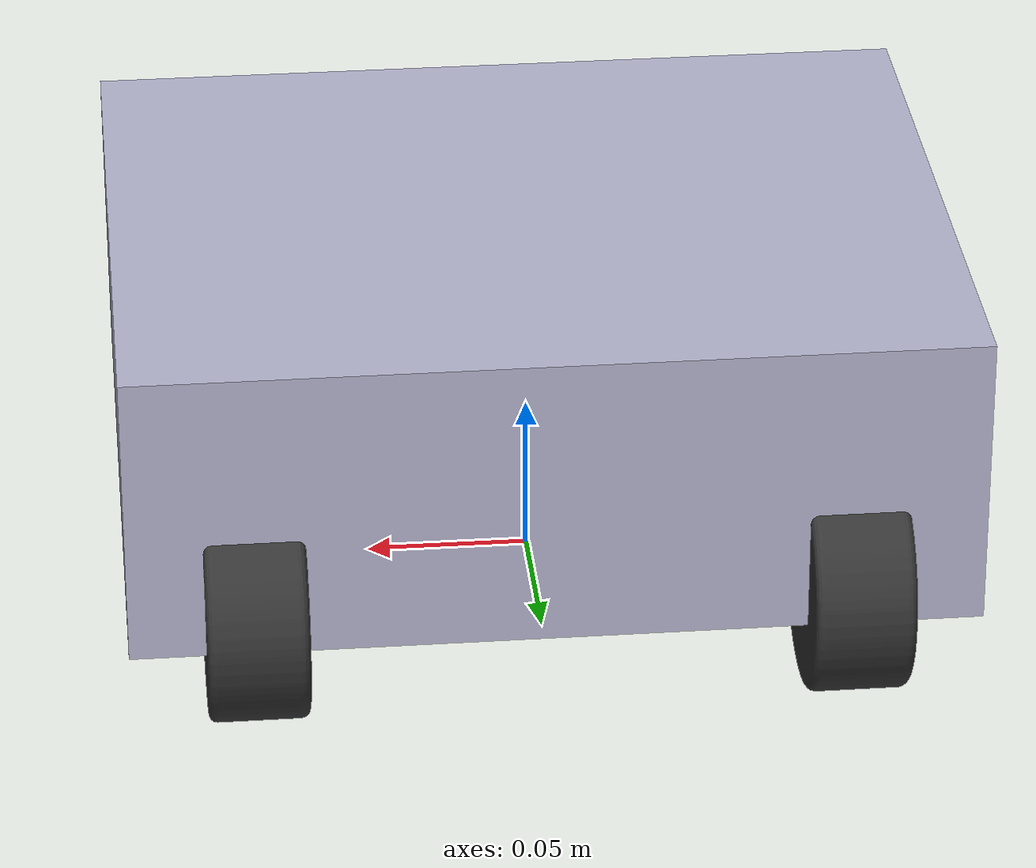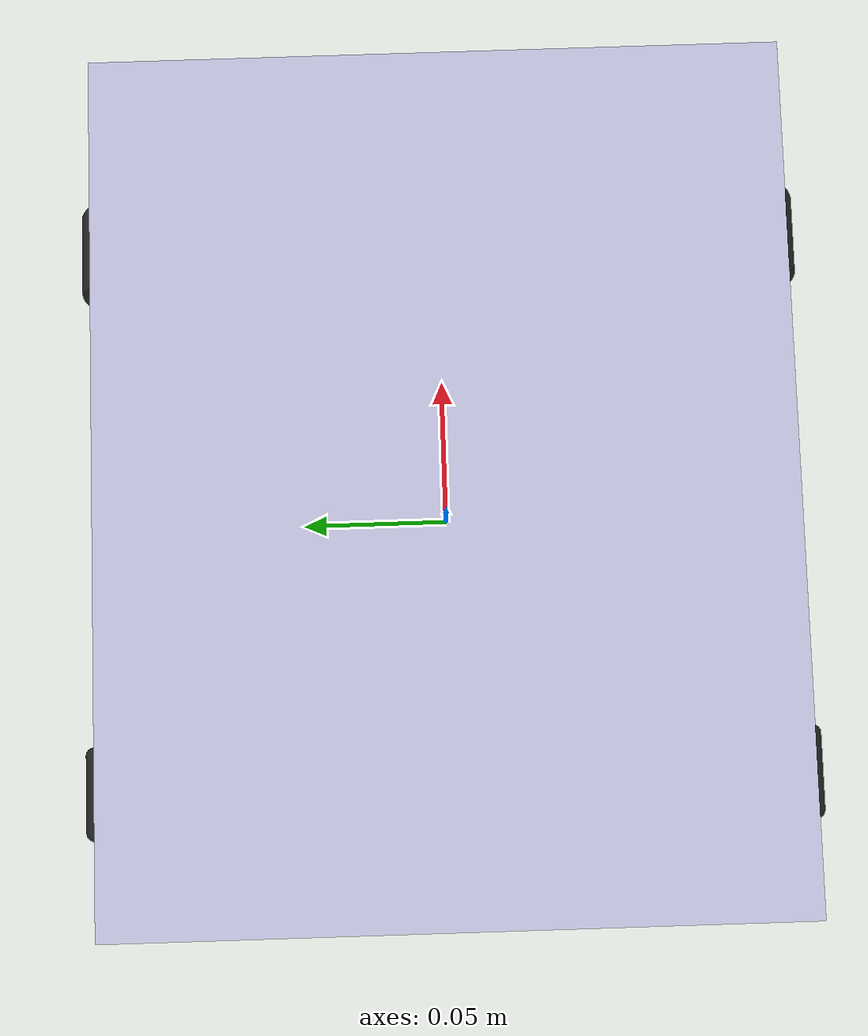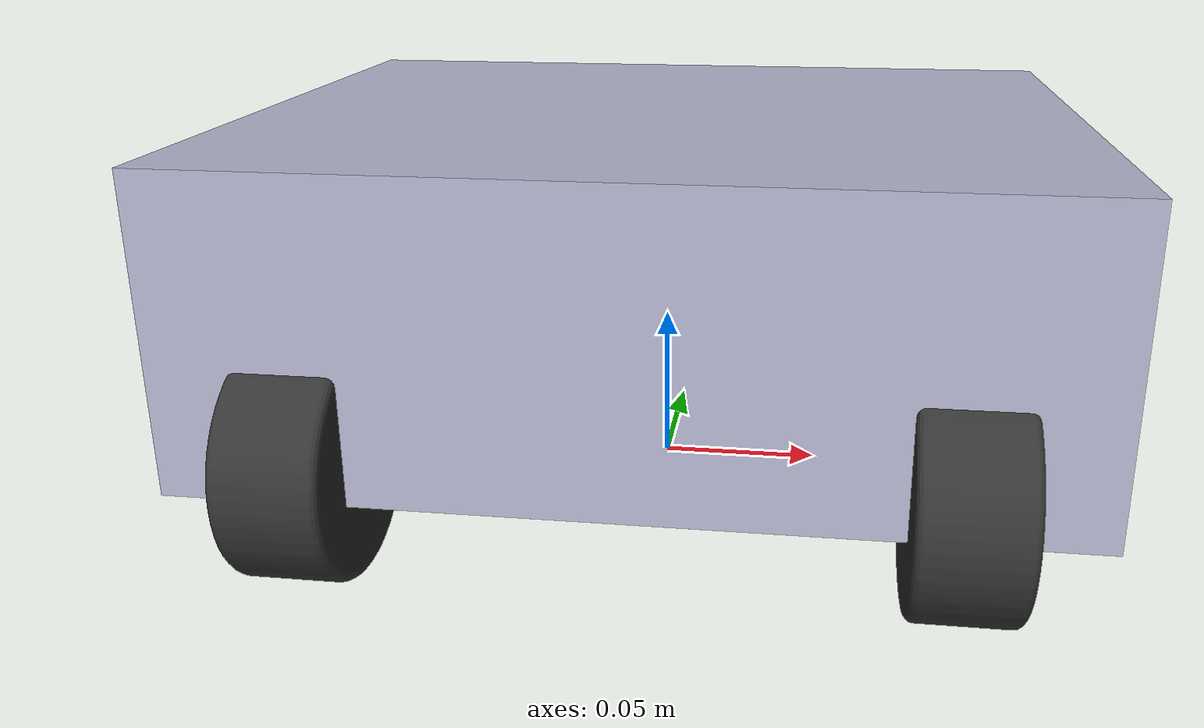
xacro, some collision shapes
<?xml version="1.0"?>
<robot name="mecanum_robot" xmlns:xacro="http://www.ros.org/wiki/xacro">

  <!-- Chassis -->
  <xacro:property name="chassis_length" value="0.2032" />    <!-- left-to-right (X) -->
  <xacro:property name="chassis_width" value="0.254" />    <!-- front-to-back (Y) -->
  <xacro:property name="chassis_height" value="0.091397" />     <!-- total height of all 3 tiers -->
  <xacro:property name="chassis_z_offset" value="0.025103" />   <!-- ground to bottom of lowest tier -->

  <!-- Wheel -->
  <xacro:property name="wheel_radius" value="0.034" />
  <xacro:property name="wheel_width" value="0.03" />

  <!-- Wheel position (distance from center of robot to center of wheel) -->
  <xacro:property name="wheelbase" value="0.1726" />            <!-- front-to-rear wheel center distance -->
  <xacro:property name="track_width" value="0.1784" />          <!-- left-to-right wheel center distance -->

  <!-- ToF sensor positions (distance from base_link center to each sensor face) -->
  <xacro:property name="tof_front_x" value="0" />               <!-- front sensors X offset -->
  <xacro:property name="tof_front_y" value="0.1246" />          <!-- front sensors Y offset from center -->
  <xacro:property name="tof_rear_right_x" value="0.0275" />     <!-- rear right sensor X offset -->
  <xacro:property name="tof_rear_left_x" value="-0.0275" />     <!-- rear left sensor X offset -->
  <xacro:property name="tof_rear_y" value="-0.1193" />          <!-- rear sensor Y offset -->
  <xacro:property name="tof_side_x" value="-0.1012" />          <!-- side sensor X offset -->
  <xacro:property name="tof_side_y" value="0.0003" />           <!-- right sensor Y offset -->
  <xacro:property name="tof_z" value="0.0793" />                <!-- height of all ToF sensors from ground -->

  <!-- Mass (kg) -->
  <xacro:property name="chassis_mass" value="1.5" /> <!-- TODO: Weigh this IRL-->
  <xacro:property name="wheel_mass" value="0.05" />  <!-- TODO: Weigh this IRL-->

  <!-- Origin: center of footprint, on the ground plane -->

  <link name="base_link" />

  <!-- Chassis visual/collision attached to base_link via fixed joint -->
  <link name="chassis_link">
    <visual>
      <origin xyz="0 0 0" rpy="0 0 0" />
      <geometry>
        <mesh filename="package://mecanum_robot/meshes/Chassis.STL"/>
      </geometry>
      <material name="acrylic_clear">
        <color rgba="0.7 0.7 0.8 1" />
      </material>
    </visual>
    <collision>
      <origin xyz="0 0 ${0.0251 + (0.1201 - 0.0251) / 2}" rpy="0 0 0" />
      <geometry>
        <box size="${chassis_width} ${chassis_length} ${chassis_height}" />
      </geometry>
    </collision>
    <inertial>
      <mass value="${chassis_mass}" />
      <origin xyz="0 0 ${0.0251 + (0.1201 - 0.0251) / 2}" rpy="0 0 0" />
      <inertia
        ixx="0.0064" ixy="0" ixz="0"
        iyy="0.0079" iyz="0" izz="0.0065" />
    </inertial>
  </link>

  <joint name="base_to_chassis" type="fixed">
    <parent link="base_link" />
    <child link="chassis_link" />
    <origin xyz="0 0 0" rpy="0 0 0" />
  </joint>

  <!-- Wheel visual/collision attached to base_link via fixed joint 4x -->

  <xacro:macro name="mecanum_wheel" params="name x_pos y_pos rotation">
    <link name="${name}_wheel_link">
      <visual>
        <origin xyz="0 0 0" rpy="0 ${rotation} 0" />
        <geometry>
          <mesh filename="package://mecanum_robot/meshes/Wheel.STL"/>
        </geometry>
        <material name="wheel_black">
          <color rgba="0.2 0.2 0.2 1.0" />
        </material>
      </visual>
      <inertial>
        <mass value="${wheel_mass}" />
        <origin xyz="0 0 0" rpy="0 0 0" />
        <!-- Cylinder inertia -->
        <inertia
          ixx="0.0001" ixy="0" ixz="0"
          iyy="0.0001" iyz="0" izz="0.0001"/>
      </inertial>
    </link>

    <joint name="${name}_wheel_joint" type="continuous">
      <parent link="base_link" />
      <child link="${name}_wheel_link" />
      <origin xyz="${x_pos} ${y_pos} ${wheel_radius}" rpy="0 0 0" />
      <axis xyz="1 0 0" />
      <dynamics damping="0.01" friction="0.1" />
    </joint>
  </xacro:macro>

  <!-- Instantiate the 4 wheels -->
  <xacro:mecanum_wheel name="front_right"  y_pos="${wheelbase/2}"  x_pos="${track_width/2}" rotation="${pi}"/>
  <xacro:mecanum_wheel name="back_right" y_pos="${-wheelbase/2}"  x_pos="${track_width/2}" rotation="${pi}"/>
  <xacro:mecanum_wheel name="front_left"   y_pos="${wheelbase/2}" x_pos="${-track_width/2}" rotation="0"/>
  <xacro:mecanum_wheel name="back_left"  y_pos="${-wheelbase/2}" x_pos="${-track_width/2}" rotation="0"/>

  <!-- ToF Sensor Macro -->

  <xacro:macro name="tof_sensor" params="name x_pos y_pos yaw">
    <link name="${name}_tof_link">

    </link>

    <joint name="${name}_tof_joint" type="fixed">
      <parent link="base_link" />
      <child link="${name}_tof_link" />
      <origin xyz="${x_pos} ${y_pos} ${tof_z}" rpy="0 0 ${yaw}" />
    </joint>

    <gazebo reference="${name}_tof_link">
      <sensor type="ray" name="${name}_tof">
        <always_on>true</always_on>
        <update_rate>30</update_rate>
        <visualize>true</visualize>
        <ray>
          <scan>
            <horizontal>
              <samples>5</samples>
              <resolution>1</resolution>
              <min_angle>-0.22</min_angle>
              <max_angle>0.22</max_angle>
            </horizontal>
          </scan>
          <range>
            <min>0.03</min>
            <max>2.0</max>
            <resolution>0.001</resolution>
          </range>
        </ray>
        <plugin name="${name}_tof_plugin" filename="libgazebo_ros_ray_sensor.so">
          <ros>
            <remapping>~/out:=${name}_tof/range</remapping>
          </ros>
          <output_type>sensor_msgs/Range</output_type>
          <radiation_type>infrared</radiation_type>
          <field_of_view>0.44</field_of_view>
          <frame_name>${name}_tof_link</frame_name>
        </plugin>
      </sensor>
    </gazebo>
  </xacro:macro>

  <!-- IMU (BNO085) -->
<link name="imu_link">
</link>

<joint name="imu_joint" type="fixed">
  <parent link="base_link" />
  <child link="imu_link" />
  <origin xyz="0 0 0.1182" rpy="0 0 0" />
</joint>

  <!-- Instantiate 5 ToF sensors -->
  <!-- yaw: 0 = facing +X (right), pi/2 = facing +Y (forward) -->
  <xacro:tof_sensor name="front"       x_pos="${tof_front_x}"      y_pos="${tof_front_y}"   yaw="${pi/2}" />
  <xacro:tof_sensor name="right"  x_pos="${-tof_side_x}" y_pos="${tof_side_y}"    yaw="0" />
  <xacro:tof_sensor name="rear_right"   x_pos="${tof_rear_right_x}"  y_pos="${tof_rear_y}"    yaw="-1.3439" />
  <xacro:tof_sensor name="rear_left"        x_pos="${tof_rear_left_x}"       y_pos="${tof_rear_y}"    yaw="-1.79769" />
  <xacro:tof_sensor name="left"  x_pos="${tof_side_x}" y_pos="${tof_side_y}"    yaw="${pi}" />

  <!--     GAZEBO PLUGINS          -->

  <gazebo>
    <plugin name="mecanum_controller" filename="libgazebo_ros_planar_move.so">
      <ros>
        <namespace>/</namespace>
        <remapping>cmd_vel:=cmd_vel</remapping>
        <remapping>odom:=odom</remapping>
      </ros>
      <update_rate>50</update_rate>
      <publish_rate>50</publish_rate>
      <publish_odom>true</publish_odom>
      <publish_odom_tf>false</publish_odom_tf>
      <odometry_frame>odom</odometry_frame>
      <robot_base_frame>base_link</robot_base_frame>
    </plugin>
  </gazebo>

  <gazebo reference="front_left_wheel_link">
    <material>Gazebo/DarkGrey</material>
    <mu1>0.001</mu1>
    <mu2>0.001</mu2>
    <gravity>false</gravity>
  </gazebo>
  <gazebo reference="front_right_wheel_link">
    <material>Gazebo/DarkGrey</material>
    <mu1>0.001</mu1>
    <mu2>0.001</mu2>
    <gravity>false</gravity>
  </gazebo>
  <gazebo reference="back_left_wheel_link">
    <material>Gazebo/DarkGrey</material>
    <mu1>0.001</mu1>
    <mu2>0.001</mu2>
    <gravity>false</gravity>
  </gazebo>
  <gazebo reference="back_right_wheel_link">
    <material>Gazebo/DarkGrey</material>
    <mu1>0.001</mu1>
    <mu2>0.001</mu2>
    <gravity>false</gravity>
  </gazebo>

  <gazebo reference="chassis_link">
    <material>Gazebo/Grey</material>
    <mu1>0.001</mu1>
    <mu2>0.001</mu2>
    <gravity>false</gravity>
  </gazebo>

  <gazebo reference="imu_link">
    <sensor type="imu" name="bno085_imu">
      <always_on>true</always_on>
      <update_rate>100</update_rate>
      <visualize>false</visualize>
      <imu>
        <angular_velocity>
          <x><noise type="gaussian"><mean>0</mean><stddev>0.001</stddev></noise></x>
          <y><noise type="gaussian"><mean>0</mean><stddev>0.001</stddev></noise></y>
          <z><noise type="gaussian"><mean>0</mean><stddev>0.001</stddev></noise></z>
        </angular_velocity>
        <linear_acceleration>
          <x><noise type="gaussian"><mean>0</mean><stddev>0.01</stddev></noise></x>
          <y><noise type="gaussian"><mean>0</mean><stddev>0.01</stddev></noise></y>
          <z><noise type="gaussian"><mean>0</mean><stddev>0.01</stddev></noise></z>
        </linear_acceleration>
      </imu>
      <plugin name="imu_plugin" filename="libgazebo_ros_imu_sensor.so">
        <ros>
          <remapping>~/out:=imu/data_raw</remapping>
        </ros>
        <frame_name>imu_link</frame_name>
        <initial_orientation_as_reference>false</initial_orientation_as_reference>
      </plugin>
    </sensor>
  </gazebo>

  <gazebo>
    <plugin name="joint_state_publisher" filename="libgazebo_ros_joint_state_publisher.so">
      <ros>
        <remapping>~/out:=joint_states</remapping>
      </ros>
      <update_rate>50</update_rate>
      <joint_name>front_left_wheel_joint</joint_name>
      <joint_name>front_right_wheel_joint</joint_name>
      <joint_name>back_left_wheel_joint</joint_name>
      <joint_name>back_right_wheel_joint</joint_name>
    </plugin>
  </gazebo>

</robot>
